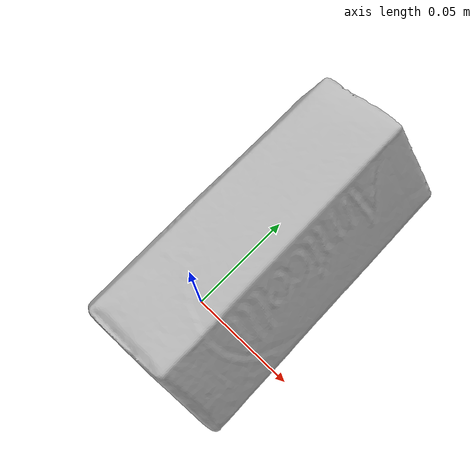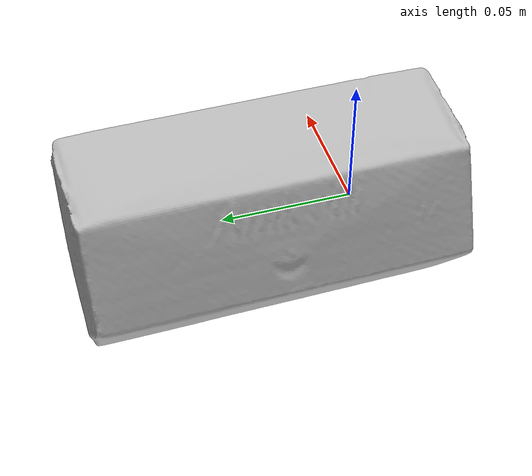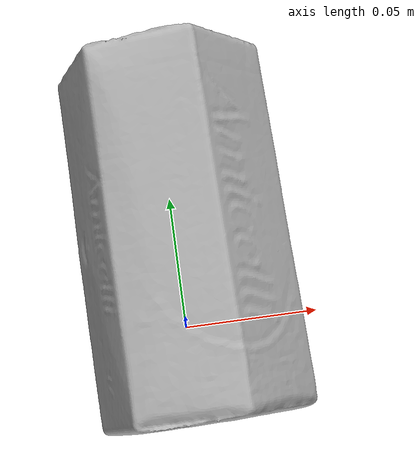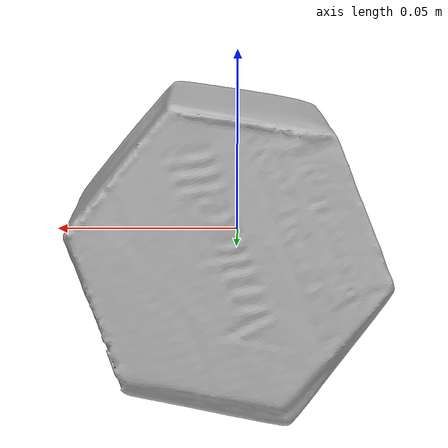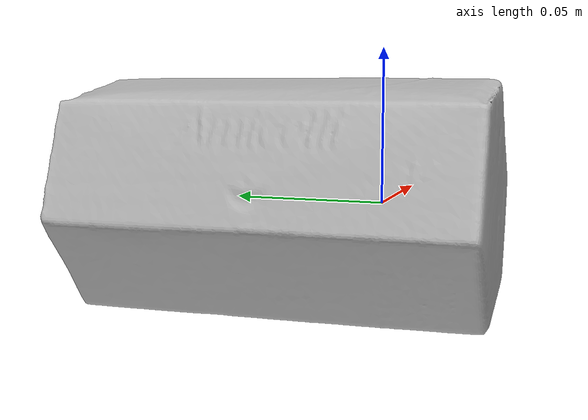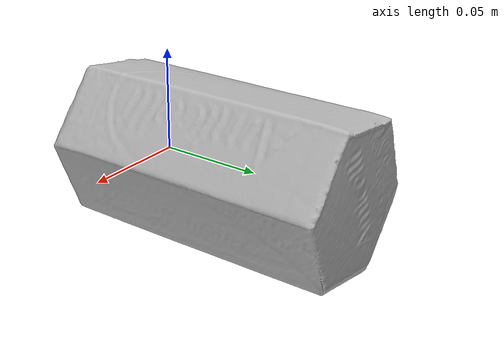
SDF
<?xml version='1.0'?>
<sdf version="1.4">
  <model name="Amicelli">
    <static>false</static>
    <link name="link">
      <inertial>
        <pose>0.002543426821759137 0.03461137946001218 0.0009470589444772823 1.5657729379571061 0.2675840617322982 0.015844915279402915</pose>
        <mass>0.06547265347096803</mass>
        <inertia>
          <ixx>0.00013454642596078402</ixx>
          <ixy>8.818719088815555e-22</ixy>
          <ixz>1.1669128294266622e-20</ixz>
          <iyy>0.00013331419707670962</iyy>
          <iyz>-4.232097816971193e-21</iyz>
          <izz>4.809825128752694e-05</izz>
        </inertia>
      </inertial>
      <collision name="collision">
        <geometry>
          <mesh>
            <!-- Use a downsampled mesh for collisions -->
            <uri>model:///Amicelli/Amicelli_250_collision.obj</uri>
	        </mesh>
        </geometry>
        <surface>
      </surface>
      </collision>
      <visual name="visual">
        <geometry>
          <mesh>
            <uri>model:///Amicelli/Amicelli_25k_tex.obj</uri>
	        </mesh>
        </geometry>
        <material>
          <script>
            <uri>model:///Amicelli/Amicelli.material</uri>
            <name>Amicelli</name>
          </script>
        </material>
      </visual>
    </link>
  </model>
</sdf>
